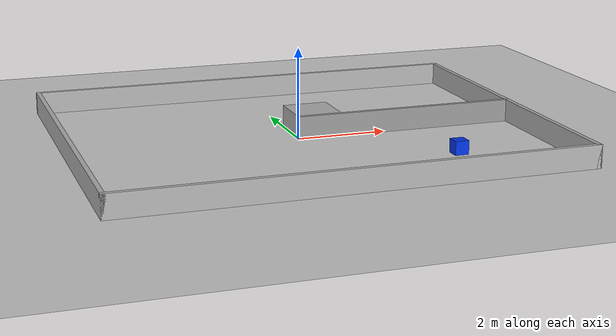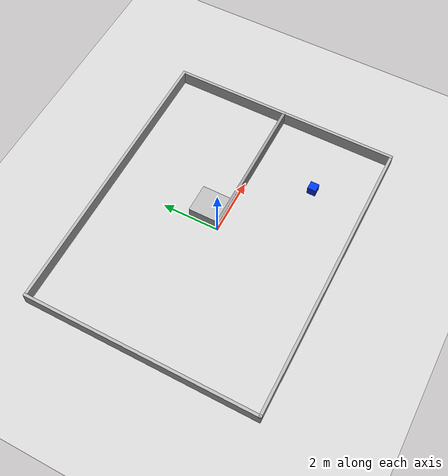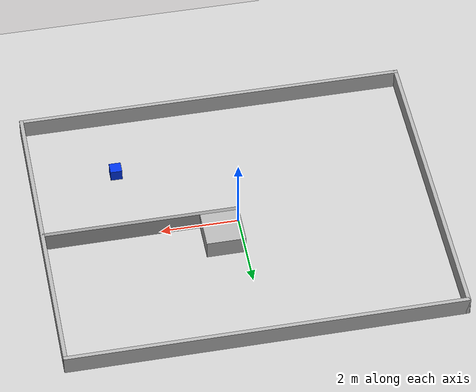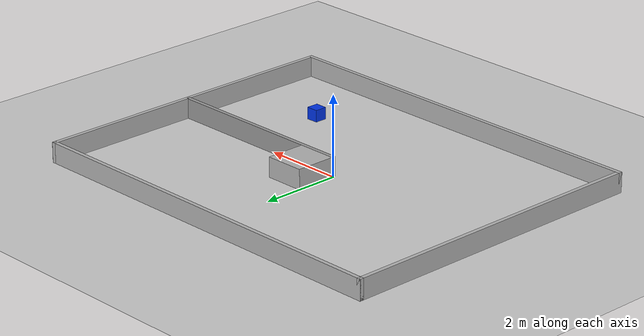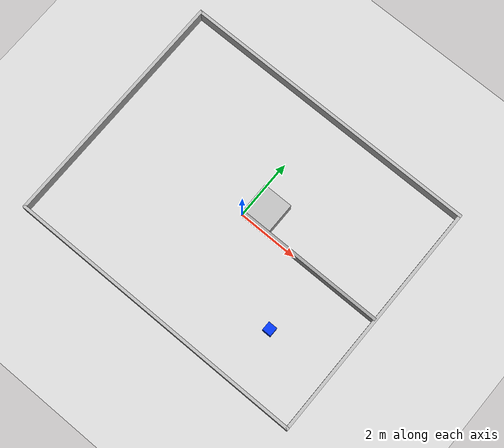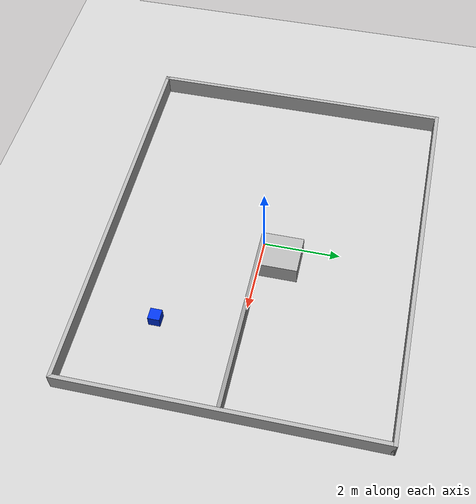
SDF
<?xml version="1.0" ?>
<sdf version="1.6">
  <world name="warehouse">

    <physics name="1ms" type="ignored">
      <max_step_size>0.001</max_step_size>
      <real_time_factor>1.0</real_time_factor>
    </physics>

    <plugin name='ignition::gazebo::systems::Physics' filename='libignition-gazebo-physics-system.so'/>
    <plugin name='ignition::gazebo::systems::UserCommands' filename='libignition-gazebo-user-commands-system.so'/>
    <plugin name='ignition::gazebo::systems::SceneBroadcaster' filename='libignition-gazebo-scene-broadcaster-system.so'/>

    <light type="directional" name="sun">
      <cast_shadows>true</cast_shadows>
      <pose>0 0 10 0 0 0</pose>
      <diffuse>0.8 0.8 0.8 1</diffuse>
      <specular>0.2 0.2 0.2 1</specular>
      <attenuation>
        <range>1000</range>
        <constant>0.9</constant>
        <linear>0.01</linear>
        <quadratic>0.001</quadratic>
      </attenuation>
      <direction>-0.5 0.1 -0.9</direction>
    </light>

    <model name="ground_plane">
      <static>true</static>
      <link name="link">
        <collision name="collision">
          <geometry>
            <plane>
              <normal>0 0 1</normal>
              <size>100 100</size>
            </plane>
          </geometry>
        </collision>
        <visual name="visual">
          <geometry>
            <plane>
              <normal>0 0 1</normal>
              <size>100 100</size>
            </plane>
          </geometry>
          <material>
            <ambient>0.8 0.8 0.8 1</ambient>
            <diffuse>0.8 0.8 0.8 1</diffuse>
            <specular>0.8 0.8 0.8 1</specular>
          </material>
        </visual>
      </link>
    </model>

    <!-- ===== 방 구조 (10m x 8m) ===== -->
    <!-- 외벽: 두께 0.1m, 높이 0.5m. 방 내부 X:-5~5, Y:-4~4 -->

    <model name="wall_north">
      <static>true</static>
      <pose>0 4 0.25 0 0 0</pose>
      <link name="link">
        <collision name="collision"><geometry><box><size>10.1 0.1 0.5</size></box></geometry></collision>
        <visual name="visual">
          <geometry><box><size>10.1 0.1 0.5</size></box></geometry>
          <material><ambient>0.7 0.7 0.7 1</ambient><diffuse>0.7 0.7 0.7 1</diffuse></material>
        </visual>
      </link>
    </model>

    <model name="wall_south">
      <static>true</static>
      <pose>0 -4 0.25 0 0 0</pose>
      <link name="link">
        <collision name="collision"><geometry><box><size>10.1 0.1 0.5</size></box></geometry></collision>
        <visual name="visual">
          <geometry><box><size>10.1 0.1 0.5</size></box></geometry>
          <material><ambient>0.7 0.7 0.7 1</ambient><diffuse>0.7 0.7 0.7 1</diffuse></material>
        </visual>
      </link>
    </model>

    <model name="wall_east">
      <static>true</static>
      <pose>5 0 0.25 0 0 0</pose>
      <link name="link">
        <collision name="collision"><geometry><box><size>0.1 8.1 0.5</size></box></geometry></collision>
        <visual name="visual">
          <geometry><box><size>0.1 8.1 0.5</size></box></geometry>
          <material><ambient>0.7 0.7 0.7 1</ambient><diffuse>0.7 0.7 0.7 1</diffuse></material>
        </visual>
      </link>
    </model>

    <model name="wall_west">
      <static>true</static>
      <pose>-5 0 0.25 0 0 0</pose>
      <link name="link">
        <collision name="collision"><geometry><box><size>0.1 8.1 0.5</size></box></geometry></collision>
        <visual name="visual">
          <geometry><box><size>0.1 8.1 0.5</size></box></geometry>
          <material><ambient>0.7 0.7 0.7 1</ambient><diffuse>0.7 0.7 0.7 1</diffuse></material>
        </visual>
      </link>
    </model>

    <!-- 가로 칸막이 벽: 중앙에서 동쪽(오른쪽)으로. 길이 5m, X:0~5, Y=0 -->
    <model name="wall_partition">
      <static>true</static>
      <pose>2.5 0 0.25 0 0 0</pose>
      <link name="link">
        <collision name="collision"><geometry><box><size>5.0 0.1 0.5</size></box></geometry></collision>
        <visual name="visual">
          <geometry><box><size>5.0 0.1 0.5</size></box></geometry>
          <material><ambient>0.6 0.6 0.6 1</ambient><diffuse>0.6 0.6 0.6 1</diffuse></material>
        </visual>
      </link>
    </model>

    <!-- 가운데 벽 장애물 (칸막이 벽 왼쪽 끝에 붙임) -->
    <model name="box_center">
      <static>true</static>
      <pose>0.5 0.55 0.25 0 0 0</pose>
      <link name="link">
        <collision name="collision"><geometry><box><size>1.0 1.0 0.5</size></box></geometry></collision>
        <visual name="visual">
          <geometry><box><size>1.0 1.0 0.5</size></box></geometry>
          <material><ambient>0.7 0.7 0.7 1</ambient><diffuse>0.7 0.7 0.7 1</diffuse></material>
        </visual>
      </link>
    </model>

    <!-- 추적 대상: 파란 큐브 (P1 도착 시 카메라에 보이는 위치). wasd로 이동 -->
    <model name="blue_cube">
      <pose>2.82 -2.13 0.15 0 0 0</pose>
      <link name="link">
        <inertial>
          <mass>1.0</mass>
          <inertia>
            <ixx>0.0045</ixx><iyy>0.0045</iyy><izz>0.0045</izz>
            <ixy>0</ixy><ixz>0</ixz><iyz>0</iyz>
          </inertia>
        </inertial>
        <collision name="collision"><geometry><box><size>0.3 0.3 0.3</size></box></geometry></collision>
        <visual name="visual">
          <geometry><box><size>0.3 0.3 0.3</size></box></geometry>
          <material><ambient>0.0 0.2 0.9 1</ambient><diffuse>0.0 0.2 0.9 1</diffuse></material>
        </visual>
      </link>
      <plugin filename="ignition-gazebo-velocity-control-system"
              name="ignition::gazebo::systems::VelocityControl">
        <topic>/model/blue_cube/cmd_vel</topic>
      </plugin>
    </model>

  </world>
</sdf>
